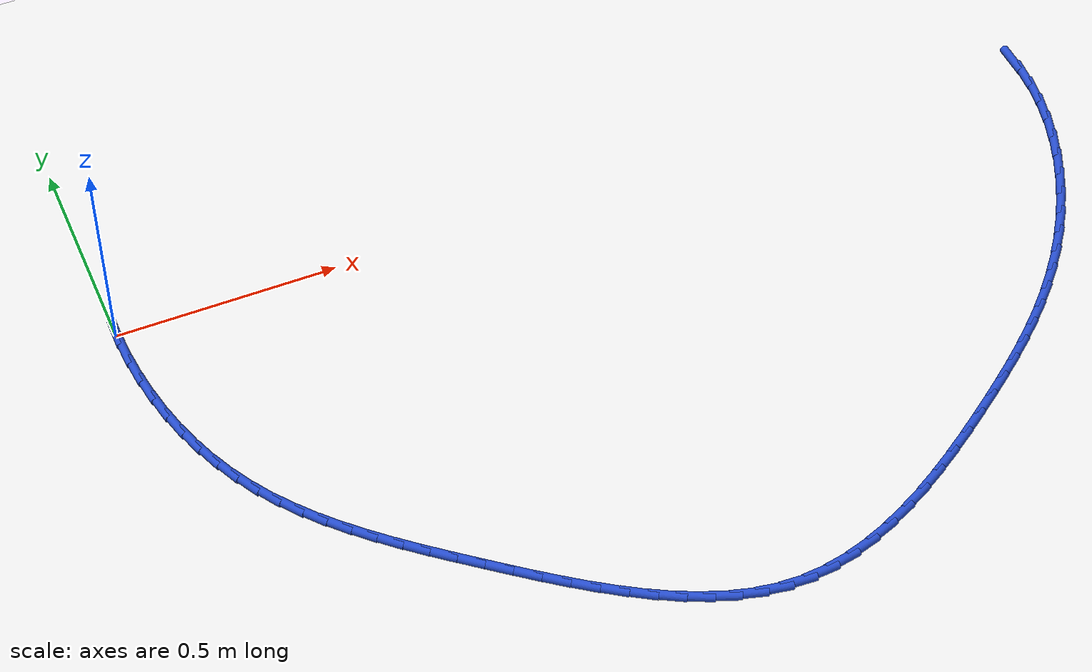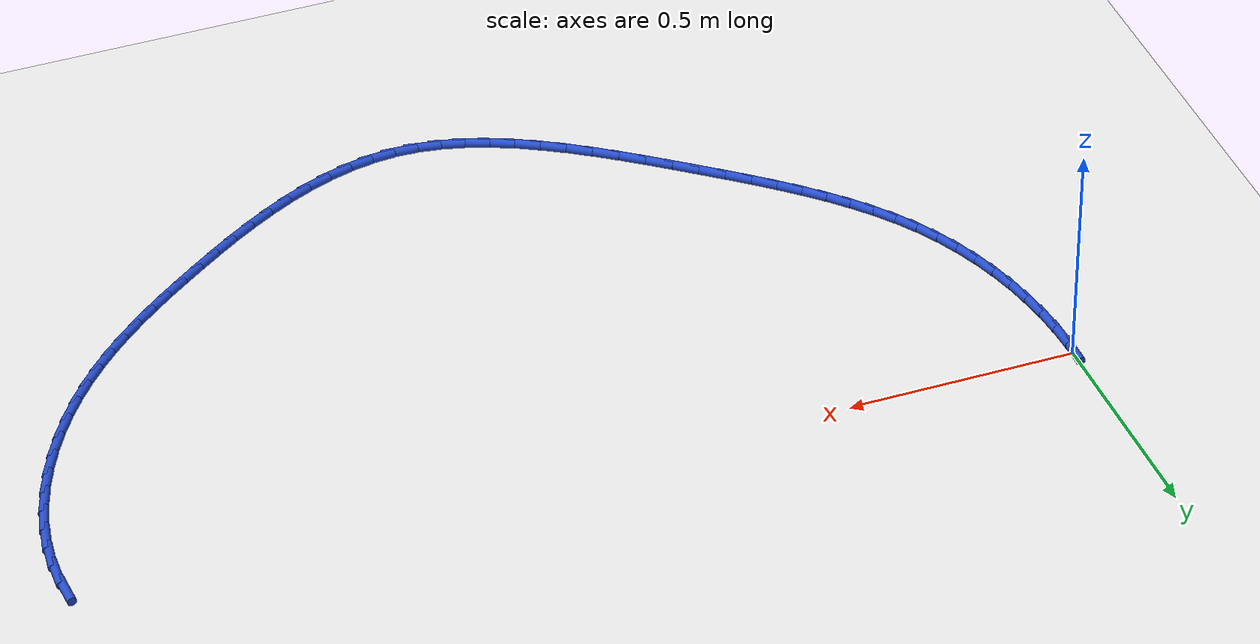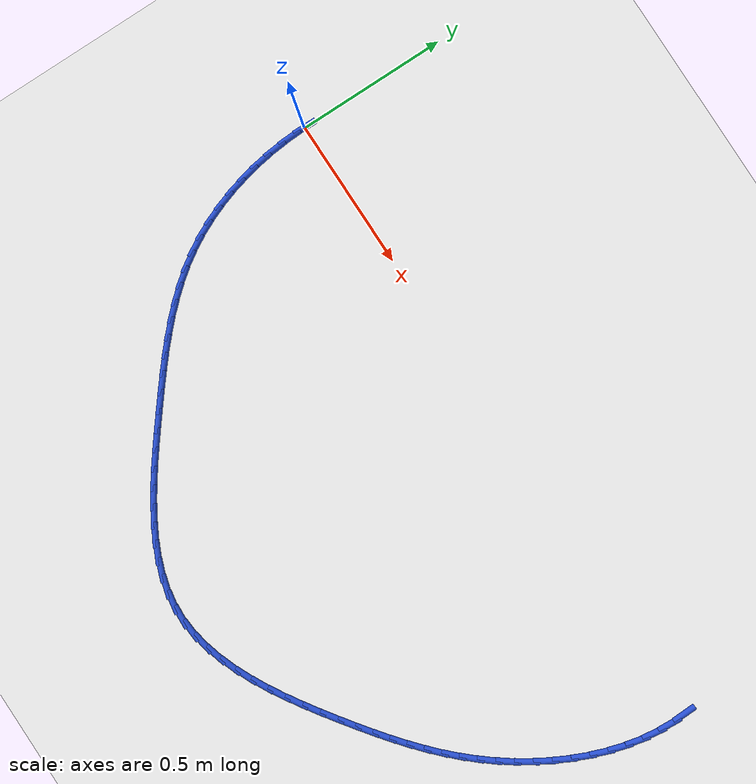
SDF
<sdf version="1.6">
 <world name="default">
  <model name="ground_plane">
   <static>1</static>
   <link name="link">
    <collision name="collision">
     <geometry><plane><normal>0 0 1</normal><size>100 100</size></plane></geometry>
     <surface><friction><ode><mu>100</mu><mu2>50</mu2></ode></friction></surface>
    </collision>
    <visual name="visual">
     <cast_shadows>0</cast_shadows>
     <geometry><plane><normal>0 0 1</normal><size>100 100</size></plane></geometry>
     <material>
      <script><uri>file://media/materials/scripts/gazebo.material</uri><name>Gazebo/WhiteGlow</name></script>
     </material>
    </visual>
   </link>
  </model>
  <model name="line">
   <link name="link_60">
    <pose>2.1676415966723512 -0.017470530119303017 0.01 0 1.57 -1.543309844751732</pose>
    <collision name="collision">
     <geometry><cylinder><radius>0.01</radius><length>0.08</length></cylinder></geometry>
    </collision>
    <visual name="visual">
     <material>
      <script><name>Gazebo/Blue</name><uri>file://media/materials/scripts/gazebo.material</uri></script>
     </material>
     <geometry><cylinder><radius>0.01</radius><length>0.08</length></cylinder></geometry>
    </visual>
   </link>
   <link name="link_61">
    <pose>2.169142094535912 -0.07204717486574745 0.01 0 1.57 1.5030361322181276</pose>
    <collision name="collision">
     <geometry><cylinder><radius>0.01</radius><length>0.08</length></cylinder></geometry>
    </collision>
    <visual name="visual">
     <material>
      <script><name>Gazebo/Blue</name><uri>file://media/materials/scripts/gazebo.material</uri></script>
     </material>
     <geometry><cylinder><radius>0.01</radius><length>0.08</length></cylinder></geometry>
    </visual>
   </link>
   <link name="link_62">
    <pose>2.1653944465116344 -0.12727001750805472 0.01 0 1.57 1.4166821917913006</pose>
    <collision name="collision">
     <geometry><cylinder><radius>0.01</radius><length>0.08</length></cylinder></geometry>
    </collision>
    <visual name="visual">
     <material>
      <script><name>Gazebo/Blue</name><uri>file://media/materials/scripts/gazebo.material</uri></script>
     </material>
     <geometry><cylinder><radius>0.01</radius><length>0.08</length></cylinder></geometry>
    </visual>
   </link>
   <link name="link_63">
    <pose>2.156768852310662 -0.18279507701819825 0.01 0 1.57 1.3383663576064075</pose>
    <collision name="collision">
     <geometry><cylinder><radius>0.01</radius><length>0.08</length></cylinder></geometry>
    </collision>
    <visual name="visual">
     <material>
      <script><name>Gazebo/Blue</name><uri>file://media/materials/scripts/gazebo.material</uri></script>
     </material>
     <geometry><cylinder><radius>0.01</radius><length>0.08</length></cylinder></geometry>
    </visual>
   </link>
   <link name="link_64">
    <pose>2.1436355116441455 -0.23827837236814964 0.01 0 1.57 1.2670369523934826</pose>
    <collision name="collision">
     <geometry><cylinder><radius>0.01</radius><length>0.08</length></cylinder></geometry>
    </collision>
    <visual name="visual">
     <material>
      <script><name>Gazebo/Blue</name><uri>file://media/materials/scripts/gazebo.material</uri></script>
     </material>
     <geometry><cylinder><radius>0.01</radius><length>0.08</length></cylinder></geometry>
    </visual>
   </link>
   <link name="link_65">
    <pose>2.1263646242232306 -0.29337592252988254 0.01 0 1.57 1.2015806439985424</pose>
    <collision name="collision">
     <geometry><cylinder><radius>0.01</radius><length>0.08</length></cylinder></geometry>
    </collision>
    <visual name="visual">
     <material>
      <script><name>Gazebo/Blue</name><uri>file://media/materials/scripts/gazebo.material</uri></script>
     </material>
     <geometry><cylinder><radius>0.01</radius><length>0.08</length></cylinder></geometry>
    </visual>
   </link>
   <link name="link_66">
    <pose>2.105326389759064 -0.3477437464753705 0.01 0 1.57 1.1408958691460052</pose>
    <collision name="collision">
     <geometry><cylinder><radius>0.01</radius><length>0.08</length></cylinder></geometry>
    </collision>
    <visual name="visual">
     <material>
      <script><name>Gazebo/Blue</name><uri>file://media/materials/scripts/gazebo.material</uri></script>
     </material>
     <geometry><cylinder><radius>0.01</radius><length>0.08</length></cylinder></geometry>
    </visual>
   </link>
   <link name="link_67">
    <pose>2.0808910079627942 -0.401037863176585 0.01 0 1.57 1.083922120900014</pose>
    <collision name="collision">
     <geometry><cylinder><radius>0.01</radius><length>0.08</length></cylinder></geometry>
    </collision>
    <visual name="visual">
     <material>
      <script><name>Gazebo/Blue</name><uri>file://media/materials/scripts/gazebo.material</uri></script>
     </material>
     <geometry><cylinder><radius>0.01</radius><length>0.08</length></cylinder></geometry>
    </visual>
   </link>
   <link name="link_68">
    <pose>2.053428678545567 -0.4529142916054995 0.01 0 1.57 1.0296402869205092</pose>
    <collision name="collision">
     <geometry><cylinder><radius>0.01</radius><length>0.08</length></cylinder></geometry>
    </collision>
    <visual name="visual">
     <material>
      <script><name>Gazebo/Blue</name><uri>file://media/materials/scripts/gazebo.material</uri></script>
     </material>
     <geometry><cylinder><radius>0.01</radius><length>0.08</length></cylinder></geometry>
    </visual>
   </link>
   <link name="link_69">
    <pose>2.0233096012185308 -0.5030290507340872 0.01 0 1.57 0.97705414280756</pose>
    <collision name="collision">
     <geometry><cylinder><radius>0.01</radius><length>0.08</length></cylinder></geometry>
    </collision>
    <visual name="visual">
     <material>
      <script><name>Gazebo/Blue</name><uri>file://media/materials/scripts/gazebo.material</uri></script>
     </material>
     <geometry><cylinder><radius>0.01</radius><length>0.08</length></cylinder></geometry>
    </visual>
   </link>
   <link name="link_70">
    <pose>1.9909039756928313 -0.5510381595343214 0.01 0 1.57 0.9251724632374008</pose>
    <collision name="collision">
     <geometry><cylinder><radius>0.01</radius><length>0.08</length></cylinder></geometry>
    </collision>
    <visual name="visual">
     <material>
      <script><name>Gazebo/Blue</name><uri>file://media/materials/scripts/gazebo.material</uri></script>
     </material>
     <geometry><cylinder><radius>0.01</radius><length>0.08</length></cylinder></geometry>
    </visual>
   </link>
   <link name="link_71">
    <pose>1.9565802023469552 -0.5966013700427141 0.01 0 1.57 0.8741245960798641</pose>
    <collision name="collision">
     <geometry><cylinder><radius>0.01</radius><length>0.08</length></cylinder></geometry>
    </collision>
    <visual name="visual">
     <material>
      <script><name>Gazebo/Blue</name><uri>file://media/materials/scripts/gazebo.material</uri></script>
     </material>
     <geometry><cylinder><radius>0.01</radius><length>0.08</length></cylinder></geometry>
    </visual>
   </link>
   <link name="link_72">
    <pose>1.9205903361048369 -0.6396198155033803 0.01 0 1.57 0.8258373811791676</pose>
    <collision name="collision">
     <geometry><cylinder><radius>0.01</radius><length>0.08</length></cylinder></geometry>
    </collision>
    <visual name="visual">
     <material>
      <script><name>Gazebo/Blue</name><uri>file://media/materials/scripts/gazebo.material</uri></script>
     </material>
     <geometry><cylinder><radius>0.01</radius><length>0.08</length></cylinder></geometry>
    </visual>
   </link>
   <link name="link_73">
    <pose>1.8830011020193764 -0.6803791319177414 0.01 0 1.57 0.7813155388303976</pose>
    <collision name="collision">
     <geometry><cylinder><radius>0.01</radius><length>0.08</length></cylinder></geometry>
    </collision>
    <visual name="visual">
     <material>
      <script><name>Gazebo/Blue</name><uri>file://media/materials/scripts/gazebo.material</uri></script>
     </material>
     <geometry><cylinder><radius>0.01</radius><length>0.08</length></cylinder></geometry>
    </visual>
   </link>
   <link name="link_74">
    <pose>1.843862684420589 -0.71919927222448 0.01 0 1.57 0.7412776211611886</pose>
    <collision name="collision">
     <geometry><cylinder><radius>0.01</radius><length>0.08</length></cylinder></geometry>
    </collision>
    <visual name="visual">
     <material>
      <script><name>Gazebo/Blue</name><uri>file://media/materials/scripts/gazebo.material</uri></script>
     </material>
     <geometry><cylinder><radius>0.01</radius><length>0.08</length></cylinder></geometry>
    </visual>
   </link>
   <link name="link_75">
    <pose>1.8032252676384923 -0.7564001893622777 0.01 0 1.57 0.7062619048987531</pose>
    <collision name="collision">
     <geometry><cylinder><radius>0.01</radius><length>0.08</length></cylinder></geometry>
    </collision>
    <visual name="visual">
     <material>
      <script><name>Gazebo/Blue</name><uri>file://media/materials/scripts/gazebo.material</uri></script>
     </material>
     <geometry><cylinder><radius>0.01</radius><length>0.08</length></cylinder></geometry>
    </visual>
   </link>
   <link name="link_76">
    <pose>1.7611390360031023 -0.7923018362698175 0.01 0 1.57 0.6766232524917445</pose>
    <collision name="collision">
     <geometry><cylinder><radius>0.01</radius><length>0.08</length></cylinder></geometry>
    </collision>
    <visual name="visual">
     <material>
      <script><name>Gazebo/Blue</name><uri>file://media/materials/scripts/gazebo.material</uri></script>
     </material>
     <geometry><cylinder><radius>0.01</radius><length>0.08</length></cylinder></geometry>
    </visual>
   </link>
   <link name="link_77">
    <pose>1.7176541738444346 -0.8272241658857817 0.01 0 1.57 0.6525463630824395</pose>
    <collision name="collision">
     <geometry><cylinder><radius>0.01</radius><length>0.08</length></cylinder></geometry>
    </collision>
    <visual name="visual">
     <material>
      <script><name>Gazebo/Blue</name><uri>file://media/materials/scripts/gazebo.material</uri></script>
     </material>
     <geometry><cylinder><radius>0.01</radius><length>0.08</length></cylinder></geometry>
    </visual>
   </link>
   <link name="link_78">
    <pose>1.6728208654925043 -0.861487131148853 0.01 0 1.57 0.6340688908235342</pose>
    <collision name="collision">
     <geometry><cylinder><radius>0.01</radius><length>0.08</length></cylinder></geometry>
    </collision>
    <visual name="visual">
     <material>
      <script><name>Gazebo/Blue</name><uri>file://media/materials/scripts/gazebo.material</uri></script>
     </material>
     <geometry><cylinder><radius>0.01</radius><length>0.08</length></cylinder></geometry>
    </visual>
   </link>
   <link name="link_79">
    <pose>1.6266892952773297 -0.8954106849977133 0.01 0 1.57 0.6206670282695478</pose>
    <collision name="collision">
     <geometry><cylinder><radius>0.01</radius><length>0.08</length></cylinder></geometry>
    </collision>
    <visual name="visual">
     <material>
      <script><name>Gazebo/Blue</name><uri>file://media/materials/scripts/gazebo.material</uri></script>
     </material>
     <geometry><cylinder><radius>0.01</radius><length>0.08</length></cylinder></geometry>
    </visual>
   </link>
   <link name="link_80">
    <pose>1.5793130662052561 -0.9292807317562222 0.01 0 1.57 0.6056511681491957</pose>
    <collision name="collision">
     <geometry><cylinder><radius>0.01</radius><length>0.08</length></cylinder></geometry>
    </collision>
    <visual name="visual">
     <material>
      <script><name>Gazebo/Blue</name><uri>file://media/materials/scripts/gazebo.material</uri></script>
     </material>
     <geometry><cylinder><radius>0.01</radius><length>0.08</length></cylinder></geometry>
    </visual>
   </link>
   <link name="link_81">
    <pose>1.5307966370401311 -0.9628766732510464 0.01 0 1.57 0.5838532670918481</pose>
    <collision name="collision">
     <geometry><cylinder><radius>0.01</radius><length>0.08</length></cylinder></geometry>
    </collision>
    <visual name="visual">
     <material>
      <script><name>Gazebo/Blue</name><uri>file://media/materials/scripts/gazebo.material</uri></script>
     </material>
     <geometry><cylinder><radius>0.01</radius><length>0.08</length></cylinder></geometry>
    </visual>
   </link>
   <link name="link_82">
    <pose>1.481283463671556 -0.9955895159226232 0.01 0 1.57 0.5547699061647592</pose>
    <collision name="collision">
     <geometry><cylinder><radius>0.01</radius><length>0.08</length></cylinder></geometry>
    </collision>
    <visual name="visual">
     <material>
      <script><name>Gazebo/Blue</name><uri>file://media/materials/scripts/gazebo.material</uri></script>
     </material>
     <geometry><cylinder><radius>0.01</radius><length>0.08</length></cylinder></geometry>
    </visual>
   </link>
   <link name="link_83">
    <pose>1.4309179964051755 -1.0268003622352038 0.01 0 1.57 0.5177457894852185</pose>
    <collision name="collision">
     <geometry><cylinder><radius>0.01</radius><length>0.08</length></cylinder></geometry>
    </collision>
    <visual name="visual">
     <material>
      <script><name>Gazebo/Blue</name><uri>file://media/materials/scripts/gazebo.material</uri></script>
     </material>
     <geometry><cylinder><radius>0.01</radius><length>0.08</length></cylinder></geometry>
    </visual>
   </link>
   <link name="link_84">
    <pose>1.3798446855466369 -1.05589031465304 0.01 0 1.57 0.4718528602964951</pose>
    <collision name="collision">
     <geometry><cylinder><radius>0.01</radius><length>0.08</length></cylinder></geometry>
    </collision>
    <visual name="visual">
     <material>
      <script><name>Gazebo/Blue</name><uri>file://media/materials/scripts/gazebo.material</uri></script>
     </material>
     <geometry><cylinder><radius>0.01</radius><length>0.08</length></cylinder></geometry>
    </visual>
   </link>
   <link name="link_85">
    <pose>1.3282079814015861 -1.0822404756403838 0.01 0 1.57 0.41590601529292925</pose>
    <collision name="collision">
     <geometry><cylinder><radius>0.01</radius><length>0.08</length></cylinder></geometry>
    </collision>
    <visual name="visual">
     <material>
      <script><name>Gazebo/Blue</name><uri>file://media/materials/scripts/gazebo.material</uri></script>
     </material>
     <geometry><cylinder><radius>0.01</radius><length>0.08</length></cylinder></geometry>
    </visual>
   </link>
   <link name="link_86">
    <pose>1.2761523342756718 -1.1052319476614865 0.01 0 1.57 0.3485134896699993</pose>
    <collision name="collision">
     <geometry><cylinder><radius>0.01</radius><length>0.08</length></cylinder></geometry>
    </collision>
    <visual name="visual">
     <material>
      <script><name>Gazebo/Blue</name><uri>file://media/materials/scripts/gazebo.material</uri></script>
     </material>
     <geometry><cylinder><radius>0.01</radius><length>0.08</length></cylinder></geometry>
    </visual>
   </link>
   <link name="link_87">
    <pose>1.2238221944745389 -1.124245833180599 0.01 0 1.57 0.26820407318776585</pose>
    <collision name="collision">
     <geometry><cylinder><radius>0.01</radius><length>0.08</length></cylinder></geometry>
    </collision>
    <visual name="visual">
     <material>
      <script><name>Gazebo/Blue</name><uri>file://media/materials/scripts/gazebo.material</uri></script>
     </material>
     <geometry><cylinder><radius>0.01</radius><length>0.08</length></cylinder></geometry>
    </visual>
   </link>
   <link name="link_88">
    <pose>1.1713620123038344 -1.1386632346619732 0.01 0 1.57 0.17368982359535498</pose>
    <collision name="collision">
     <geometry><cylinder><radius>0.01</radius><length>0.08</length></cylinder></geometry>
    </collision>
    <visual name="visual">
     <material>
      <script><name>Gazebo/Blue</name><uri>file://media/materials/scripts/gazebo.material</uri></script>
     </material>
     <geometry><cylinder><radius>0.01</radius><length>0.08</length></cylinder></geometry>
    </visual>
   </link>
   <link name="link_89">
    <pose>1.118916238069204 -1.1478652545698609 0.01 0 1.57 0.06432001708877574</pose>
    <collision name="collision">
     <geometry><cylinder><radius>0.01</radius><length>0.08</length></cylinder></geometry>
    </collision>
    <visual name="visual">
     <material>
      <script><name>Gazebo/Blue</name><uri>file://media/materials/scripts/gazebo.material</uri></script>
     </material>
     <geometry><cylinder><radius>0.01</radius><length>0.08</length></cylinder></geometry>
    </visual>
   </link>
   <link name="link_90">
    <pose>1.0666293220762966 -1.1512329953685139 0.01 0 1.57 -0.05771533148938633</pose>
    <collision name="collision">
     <geometry><cylinder><radius>0.01</radius><length>0.08</length></cylinder></geometry>
    </collision>
    <visual name="visual">
     <material>
      <script><name>Gazebo/Blue</name><uri>file://media/materials/scripts/gazebo.material</uri></script>
     </material>
     <geometry><cylinder><radius>0.01</radius><length>0.08</length></cylinder></geometry>
    </visual>
   </link>
   <link name="link_91">
    <pose>1.0146382221666241 -1.148228975538853 0.01 0 1.57 -0.17566193561991864</pose>
    <collision name="collision">
     <geometry><cylinder><radius>0.01</radius><length>0.08</length></cylinder></geometry>
    </collision>
    <visual name="visual">
     <material>
      <script><name>Gazebo/Blue</name><uri>file://media/materials/scripts/gazebo.material</uri></script>
     </material>
     <geometry><cylinder><radius>0.01</radius><length>0.08</length></cylinder></geometry>
    </visual>
   </link>
   <link name="link_92">
    <pose>0.9630108890532751 -1.13906557174174 0.01 0 1.57 -0.2795291919243206</pose>
    <collision name="collision">
     <geometry><cylinder><radius>0.01</radius><length>0.08</length></cylinder></geometry>
    </collision>
    <visual name="visual">
     <material>
      <script><name>Gazebo/Blue</name><uri>file://media/materials/scripts/gazebo.material</uri></script>
     </material>
     <geometry><cylinder><radius>0.01</radius><length>0.08</length></cylinder></geometry>
    </visual>
   </link>
   <link name="link_93">
    <pose>0.9117780666772557 -1.1243594638315073 0.01 0 1.57 -0.3686594482109368</pose>
    <collision name="collision">
     <geometry><cylinder><radius>0.01</radius><length>0.08</length></cylinder></geometry>
    </collision>
    <visual name="visual">
     <material>
      <script><name>Gazebo/Blue</name><uri>file://media/materials/scripts/gazebo.material</uri></script>
     </material>
     <geometry><cylinder><radius>0.01</radius><length>0.08</length></cylinder></geometry>
    </visual>
   </link>
   <link name="link_94">
    <pose>0.8609701378065209 -1.1047312563087417 0.01 0 1.57 -0.4436458865924817</pose>
    <collision name="collision">
     <geometry><cylinder><radius>0.01</radius><length>0.08</length></cylinder></geometry>
    </collision>
    <visual name="visual">
     <material>
      <script><name>Gazebo/Blue</name><uri>file://media/materials/scripts/gazebo.material</uri></script>
     </material>
     <geometry><cylinder><radius>0.01</radius><length>0.08</length></cylinder></geometry>
    </visual>
   </link>
   <link name="link_95">
    <pose>0.810617485209024 -1.080801553674031 0.01 0 1.57 -0.5056677818210407</pose>
    <collision name="collision">
     <geometry><cylinder><radius>0.01</radius><length>0.08</length></cylinder></geometry>
    </collision>
    <visual name="visual">
     <material>
      <script><name>Gazebo/Blue</name><uri>file://media/materials/scripts/gazebo.material</uri></script>
     </material>
     <geometry><cylinder><radius>0.01</radius><length>0.08</length></cylinder></geometry>
    </visual>
   </link>
   <link name="link_96">
    <pose>0.7607504916527179 -1.0531909604279621 0.01 0 1.57 -0.5560677263438976</pose>
    <collision name="collision">
     <geometry><cylinder><radius>0.01</radius><length>0.08</length></cylinder></geometry>
    </collision>
    <visual name="visual">
     <material>
      <script><name>Gazebo/Blue</name><uri>file://media/materials/scripts/gazebo.material</uri></script>
     </material>
     <geometry><cylinder><radius>0.01</radius><length>0.08</length></cylinder></geometry>
    </visual>
   </link>
   <link name="link_97">
    <pose>0.7113995399055577 -1.0225200810711237 0.01 0 1.57 -0.5961037782291231</pose>
    <collision name="collision">
     <geometry><cylinder><radius>0.01</radius><length>0.08</length></cylinder></geometry>
    </collision>
    <visual name="visual">
     <material>
      <script><name>Gazebo/Blue</name><uri>file://media/materials/scripts/gazebo.material</uri></script>
     </material>
     <geometry><cylinder><radius>0.01</radius><length>0.08</length></cylinder></geometry>
    </visual>
   </link>
   <link name="link_98">
    <pose>0.6625950127354966 -0.9894095201041023 0.01 0 1.57 -0.6268260988614035</pose>
    <collision name="collision">
     <geometry><cylinder><radius>0.01</radius><length>0.08</length></cylinder></geometry>
    </collision>
    <visual name="visual">
     <material>
      <script><name>Gazebo/Blue</name><uri>file://media/materials/scripts/gazebo.material</uri></script>
     </material>
     <geometry><cylinder><radius>0.01</radius><length>0.08</length></cylinder></geometry>
    </visual>
   </link>
   <link name="link_99">
    <pose>0.6143672929104884 -0.9544798820274856 0.01 0 1.57 -0.649024769317321</pose>
    <collision name="collision">
     <geometry><cylinder><radius>0.01</radius><length>0.08</length></cylinder></geometry>
    </collision>
    <visual name="visual">
     <material>
      <script><name>Gazebo/Blue</name><uri>file://media/materials/scripts/gazebo.material</uri></script>
     </material>
     <geometry><cylinder><radius>0.01</radius><length>0.08</length></cylinder></geometry>
    </visual>
   </link>
   <link name="link_100">
    <pose>0.5667467631984859 -0.9183517713418607 0.01 0 1.57 -0.6632101797714828</pose>
    <collision name="collision">
     <geometry><cylinder><radius>0.01</radius><length>0.08</length></cylinder></geometry>
    </collision>
    <visual name="visual">
     <material>
      <script><name>Gazebo/Blue</name><uri>file://media/materials/scripts/gazebo.material</uri></script>
     </material>
     <geometry><cylinder><radius>0.01</radius><length>0.08</length></cylinder></geometry>
    </visual>
   </link>
   <link name="link_101">
    <pose>0.5197638063674447 -0.881645792547816 0.01 0 1.57 -0.6700611624267684</pose>
    <collision name="collision">
     <geometry><cylinder><radius>0.01</radius><length>0.08</length></cylinder></geometry>
    </collision>
    <visual name="visual">
     <material>
      <script><name>Gazebo/Blue</name><uri>file://media/materials/scripts/gazebo.material</uri></script>
     </material>
     <geometry><cylinder><radius>0.01</radius><length>0.08</length></cylinder></geometry>
    </visual>
   </link>
   <link name="link_102">
    <pose>0.47345621004769955 -0.8449537958026023 0.01 0 1.57 -0.6772087470637729</pose>
    <collision name="collision">
     <geometry><cylinder><radius>0.01</radius><length>0.08</length></cylinder></geometry>
    </collision>
    <visual name="visual">
     <material>
      <script><name>Gazebo/Blue</name><uri>file://media/materials/scripts/gazebo.material</uri></script>
     </material>
     <geometry><cylinder><radius>0.01</radius><length>0.08</length></cylinder></geometry>
    </visual>
   </link>
   <link name="link_103">
    <pose>0.4279842840792982 -0.8083918566301836 0.01 0 1.57 -0.6911027098798738</pose>
    <collision name="collision">
     <geometry><cylinder><radius>0.01</radius><length>0.08</length></cylinder></geometry>
    </collision>
    <visual name="visual">
     <material>
      <script><name>Gazebo/Blue</name><uri>file://media/materials/scripts/gazebo.material</uri></script>
     </material>
     <geometry><cylinder><radius>0.01</radius><length>0.08</length></cylinder></geometry>
    </visual>
   </link>
   <link name="link_104">
    <pose>0.38360903646521144 -0.7716850224164394 0.01 0 1.57 -0.7122155256782992</pose>
    <collision name="collision">
     <geometry><cylinder><radius>0.01</radius><length>0.08</length></cylinder></geometry>
    </collision>
    <visual name="visual">
     <material>
      <script><name>Gazebo/Blue</name><uri>file://media/materials/scripts/gazebo.material</uri></script>
     </material>
     <geometry><cylinder><radius>0.01</radius><length>0.08</length></cylinder></geometry>
    </visual>
   </link>
   <link name="link_105">
    <pose>0.34059446254208914 -0.7345467402211698 0.01 0 1.57 -0.7408372490810097</pose>
    <collision name="collision">
     <geometry><cylinder><radius>0.01</radius><length>0.08</length></cylinder></geometry>
    </collision>
    <visual name="visual">
     <material>
      <script><name>Gazebo/Blue</name><uri>file://media/materials/scripts/gazebo.material</uri></script>
     </material>
     <geometry><cylinder><radius>0.01</radius><length>0.08</length></cylinder></geometry>
    </visual>
   </link>
   <link name="link_106">
    <pose>0.29920455764657916 -0.6966904571041727 0.01 0 1.57 -0.7772259796544323</pose>
    <collision name="collision">
     <geometry><cylinder><radius>0.01</radius><length>0.08</length></cylinder></geometry>
    </collision>
    <visual name="visual">
     <material>
      <script><name>Gazebo/Blue</name><uri>file://media/materials/scripts/gazebo.material</uri></script>
     </material>
     <geometry><cylinder><radius>0.01</radius><length>0.08</length></cylinder></geometry>
    </visual>
   </link>
   <link name="link_107">
    <pose>0.2597033171153302 -0.657829620125247 0.01 0 1.57 -0.8215545798710044</pose>
    <collision name="collision">
     <geometry><cylinder><radius>0.01</radius><length>0.08</length></cylinder></geometry>
    </collision>
    <visual name="visual">
     <material>
      <script><name>Gazebo/Blue</name><uri>file://media/materials/scripts/gazebo.material</uri></script>
     </material>
     <geometry><cylinder><radius>0.01</radius><length>0.08</length></cylinder></geometry>
    </visual>
   </link>
   <link name="link_108">
    <pose>0.2223547362849903 -0.6176776763441911 0.01 0 1.57 -0.8738381614246329</pose>
    <collision name="collision">
     <geometry><cylinder><radius>0.01</radius><length>0.08</length></cylinder></geometry>
    </collision>
    <visual name="visual">
     <material>
      <script><name>Gazebo/Blue</name><uri>file://media/materials/scripts/gazebo.material</uri></script>
     </material>
     <geometry><cylinder><radius>0.01</radius><length>0.08</length></cylinder></geometry>
    </visual>
   </link>
   <link name="link_109">
    <pose>0.18742281049220907 -0.5759480728208046 0.01 0 1.57 -0.9338467891402303</pose>
    <collision name="collision">
     <geometry><cylinder><radius>0.01</radius><length>0.08</length></cylinder></geometry>
    </collision>
    <visual name="visual">
     <material>
      <script><name>Gazebo/Blue</name><uri>file://media/materials/scripts/gazebo.material</uri></script>
     </material>
     <geometry><cylinder><radius>0.01</radius><length>0.08</length></cylinder></geometry>
    </visual>
   </link>
   <link name="link_110">
    <pose>0.15517153507363465 -0.532354256614886 0.01 0 1.57 -1.0009785812210195</pose>
    <collision name="collision">
     <geometry><cylinder><radius>0.01</radius><length>0.08</length></cylinder></geometry>
    </collision>
    <visual name="visual">
     <material>
      <script><name>Gazebo/Blue</name><uri>file://media/materials/scripts/gazebo.material</uri></script>
     </material>
     <geometry><cylinder><radius>0.01</radius><length>0.08</length></cylinder></geometry>
    </visual>
   </link>
   <link name="link_111">
    <pose>0.12586377259360448 -0.48661172697860083 0.01 0 1.57 -1.071178193313838</pose>
    <collision name="collision">
     <geometry><cylinder><radius>0.01</radius><length>0.08</length></cylinder></geometry>
    </collision>
    <visual name="visual">
     <material>
      <script><name>Gazebo/Blue</name><uri>file://media/materials/scripts/gazebo.material</uri></script>
     </material>
     <geometry><cylinder><radius>0.01</radius><length>0.08</length></cylinder></geometry>
    </visual>
   </link>
   <link name="link_112">
    <pose>0.09966521226485532 -0.4386120277305934 0.01 0 1.57 -1.1385377659859108</pose>
    <collision name="collision">
     <geometry><cylinder><radius>0.01</radius><length>0.08</length></cylinder></geometry>
    </collision>
    <visual name="visual">
     <material>
      <script><name>Gazebo/Blue</name><uri>file://media/materials/scripts/gazebo.material</uri></script>
     </material>
     <geometry><cylinder><radius>0.01</radius><length>0.08</length></cylinder></geometry>
    </visual>
   </link>
   <link name="link_113">
    <pose>0.0765711834143452 -0.38855533599013625 0.01 0 1.57 -1.2026712449520234</pose>
    <collision name="collision">
     <geometry><cylinder><radius>0.01</radius><length>0.08</length></cylinder></geometry>
    </collision>
    <visual name="visual">
     <material>
      <script><name>Gazebo/Blue</name><uri>file://media/materials/scripts/gazebo.material</uri></script>
     </material>
     <geometry><cylinder><radius>0.01</radius><length>0.08</length></cylinder></geometry>
    </visual>
   </link>
   <link name="link_114">
    <pose>0.056559782912889794 -0.33667304813796334 0.01 0 1.57 -1.2638403840359567</pose>
    <collision name="collision">
     <geometry><cylinder><radius>0.01</radius><length>0.08</length></cylinder></geometry>
    </collision>
    <visual name="visual">
     <material>
      <script><name>Gazebo/Blue</name><uri>file://media/materials/scripts/gazebo.material</uri></script>
     </material>
     <geometry><cylinder><radius>0.01</radius><length>0.08</length></cylinder></geometry>
    </visual>
   </link>
   <link name="link_115">
    <pose>0.039609107631304874 -0.28319656055480785 0.01 0 1.57 -1.322353343339743</pose>
    <collision name="collision">
     <geometry><cylinder><radius>0.01</radius><length>0.08</length></cylinder></geometry>
    </collision>
    <visual name="visual">
     <material>
      <script><name>Gazebo/Blue</name><uri>file://media/materials/scripts/gazebo.material</uri></script>
     </material>
     <geometry><cylinder><radius>0.01</radius><length>0.08</length></cylinder></geometry>
    </visual>
   </link>
   <link name="link_116">
    <pose>0.025697254440406794 -0.2283572696214053 0.01 0 1.57 -1.3785461552989902</pose>
    <collision name="collision">
     <geometry><cylinder><radius>0.01</radius><length>0.08</length></cylinder></geometry>
    </collision>
    <visual name="visual">
     <material>
      <script><name>Gazebo/Blue</name><uri>file://media/materials/scripts/gazebo.material</uri></script>
     </material>
     <geometry><cylinder><radius>0.01</radius><length>0.08</length></cylinder></geometry>
    </visual>
   </link>
   <link name="link_117">
    <pose>0.014802320211011312 -0.1723865717184892 0.01 0 1.57 -1.432769448769061</pose>
    <collision name="collision">
     <geometry><cylinder><radius>0.01</radius><length>0.08</length></cylinder></geometry>
    </collision>
    <visual name="visual">
     <material>
      <script><name>Gazebo/Blue</name><uri>file://media/materials/scripts/gazebo.material</uri></script>
     </material>
     <geometry><cylinder><radius>0.01</radius><length>0.08</length></cylinder></geometry>
    </visual>
   </link>
   <link name="link_118">
    <pose>0.006902401813934383 -0.11551586322679382 0.01 0 1.57 -1.485379647819092</pose>
    <collision name="collision">
     <geometry><cylinder><radius>0.01</radius><length>0.08</length></cylinder></geometry>
    </collision>
    <visual name="visual">
     <material>
      <script><name>Gazebo/Blue</name><uri>file://media/materials/scripts/gazebo.material</uri></script>
     </material>
     <geometry><cylinder><radius>0.01</radius><length>0.08</length></cylinder></geometry>
    </visual>
   </link>
   <link name="link_119">
    <pose>0.00197559611999191 -0.057976540527052256 0.01 0 1.57 -1.5367337219230863</pose>
    <collision name="collision">
     <geometry><cylinder><radius>0.01</radius><length>0.08</length></cylinder></geometry>
    </collision>
    <visual name="visual">
     <material>
      <script><name>Gazebo/Blue</name><uri>file://media/materials/scripts/gazebo.material</uri></script>
     </material>
     <geometry><cylinder><radius>0.01</radius><length>0.08</length></cylinder></geometry>
    </visual>
   </link>
   <link name="link_120">
    <pose>-5.204170427930421e-18 -3.0531133177191805e-16 0.01 0 1.57 1.554406051650329</pose>
    <collision name="collision">
     <geometry><cylinder><radius>0.01</radius><length>0.08</length></cylinder></geometry>
    </collision>
    <visual name="visual">
     <material>
      <script><name>Gazebo/Blue</name><uri>file://media/materials/scripts/gazebo.material</uri></script>
     </material>
     <geometry><cylinder><radius>0.01</radius><length>0.08</length></cylinder></geometry>
    </visual>
   </link>
  </model>
 </world>
</sdf>
